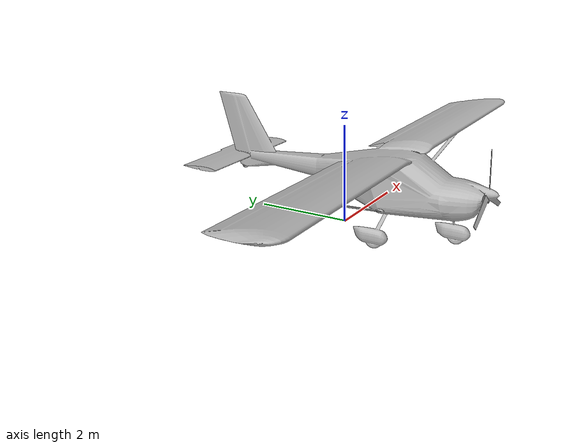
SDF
<?xml version="1.0" ?>
<sdf version="1.9">
  <model name="aircraft0">
    <static>True</static>
    <link name="aircraft0_link">
      <visual name="aircraft0_visual">
        <geometry>
          <mesh>
            <uri>meshes/visual/aircraft0.dae</uri>
          </mesh>
        </geometry>
      </visual>
      <collision name="aircraft0_collision">
        <geometry>
          <mesh>
            <uri>meshes/collision/aircraft0.stl</uri>
          </mesh>
        </geometry>
        <surface>
          <friction>
            <ode>
              <mu>1.0</mu>
              <mu2>1.0</mu2>
            </ode>
            <bullet>
              <friction>1.0</friction>
              <friction2>1.0</friction2>
            </bullet>
          </friction>
        </surface>
      </collision>
    </link>
  </model>
</sdf>
